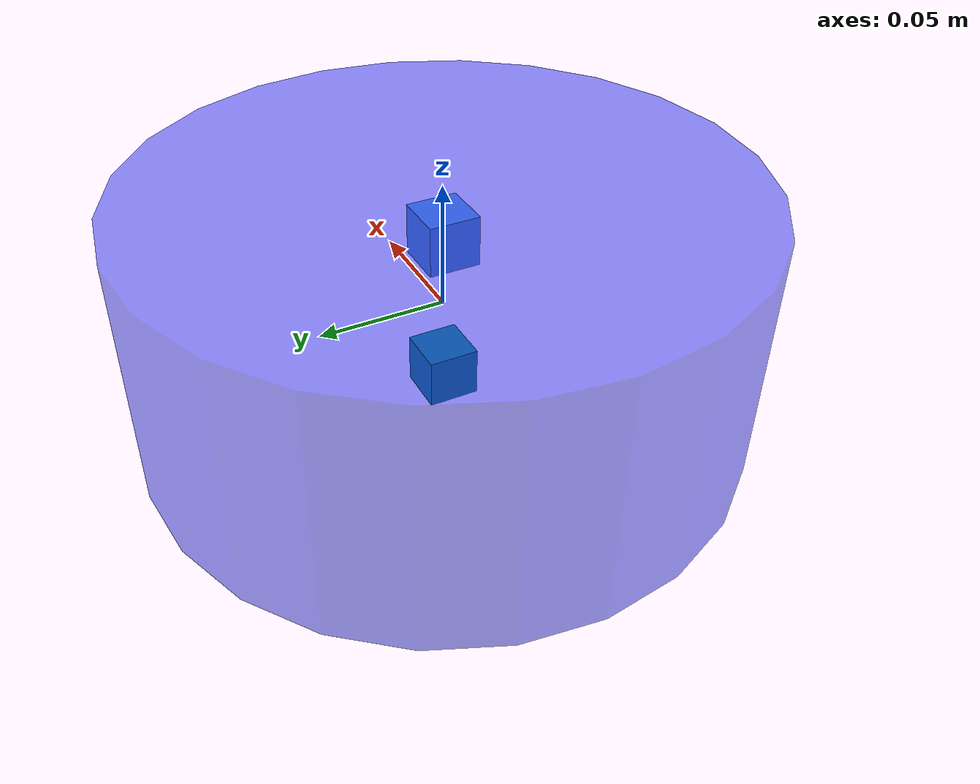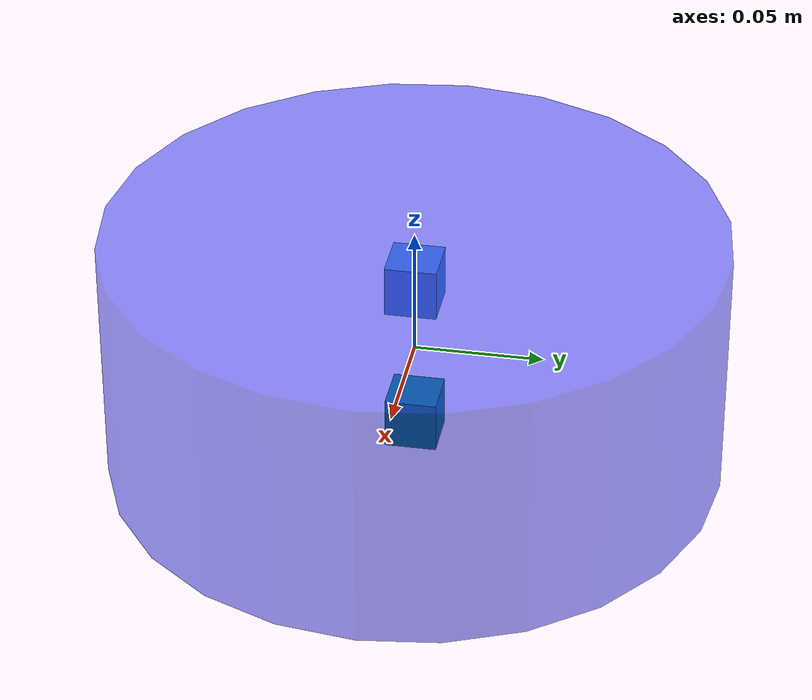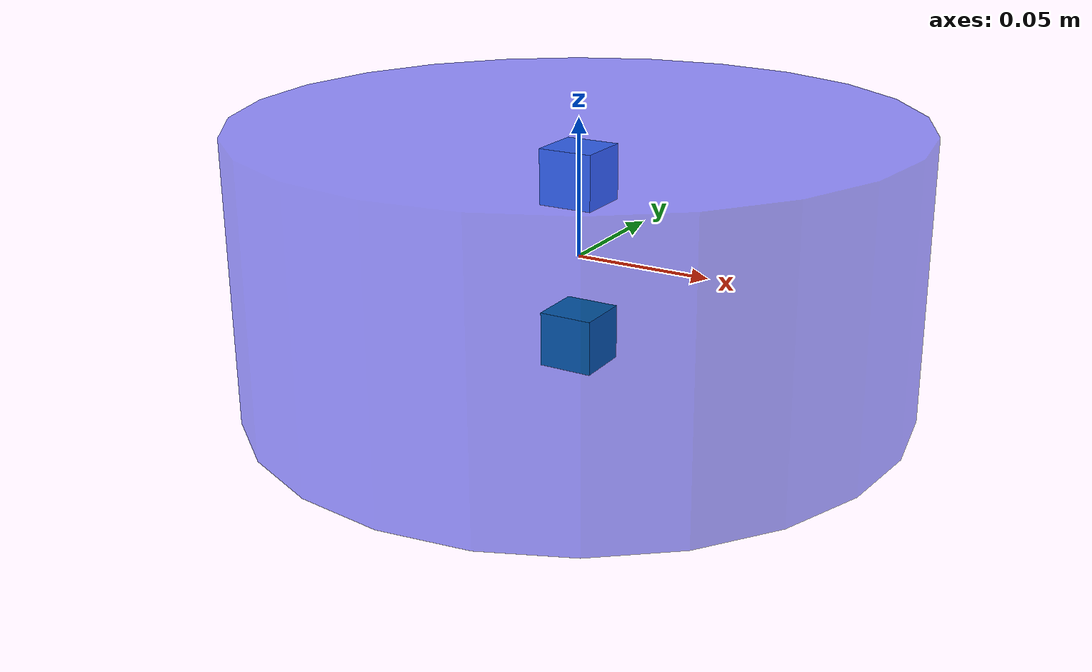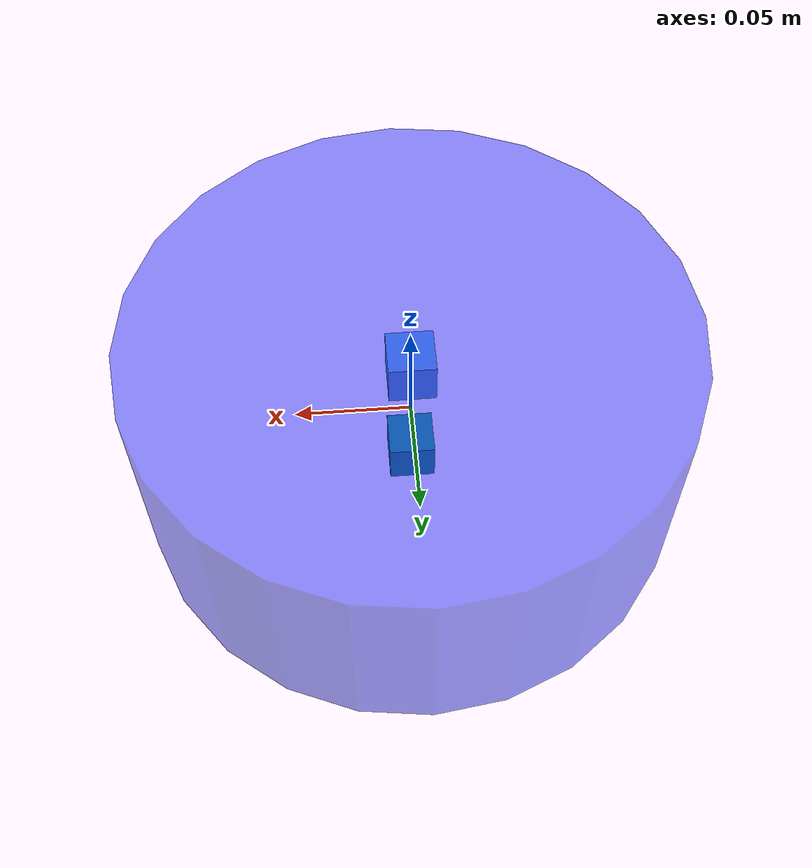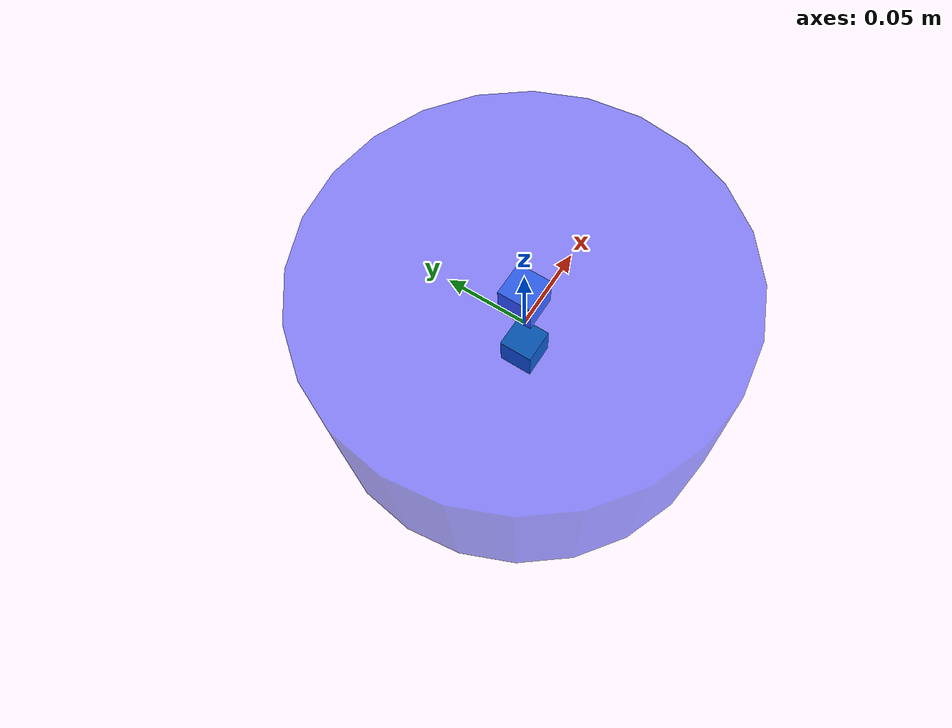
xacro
<?xml version="1.0"?>
<robot xmlns:xacro="http://www.ros.org/wiki/xacro" name="first_robot">
    <!-- 声明base模块 声明宏-->
    <xacro:macro name="base_link" params="length radius">
        <!-- 机器人身体部分 -->
        <link name="base_link">
            <!-- 部件外观描述 -->
            <visual>
                <!-- 沿自己几何中心的偏移与旋转量 -->
                <origin xyz="0 0 0" rpy="0 0 0" />
                <!-- 几何形状 -->
                <geometry>
                    <!-- 圆柱体，半径0.1m，高度 0.12m 在这里把参数用上 -->
                    <cylinder length="${radius}" radius="${length}" />
                </geometry>
                <!-- 材质子标签-蓝色 -->
                <material name="blue">
                    <color rgba="0.1 0.1 1.0 0.5" />
                </material>
            </visual>
        </link>
    </xacro:macro>

    <!-- 声明IMU模块 -->
    <xacro:macro name="imu_link" params="imu_name xyz">
        <!-- 机器人IMU部件 -->
        <link name="${imu_name}_link">
            <visual>
                <origin xyz="0 0 0" rpy="0 0 0" />
                <geometry>
                    <box size="0.02 0.02 0.02" />
                </geometry>
            </visual>
            <material name="black">
                <color rgba="0 0 0 0.5" />
            </material>
        </link>

        <!-- 机器人关节 -->
        <joint name="${imu_name}_joint" type="fixed">
            <!-- 父部件 -->
            <parent link="base_link" />
            <!-- 子部件 -->
            <child link="${imu_name}_link" />
            <!-- 子部件相对父部件的平移和旋转 -->
            <origin xyz="${xyz}" rpy="0 0 0" />
        </joint>
    </xacro:macro>

    <!-- 传递参数调用 base_link 模块 -->
    <xacro:base_link length="0.12" radius="0.1" />
    <!-- 传递参数调用 imu 模块 -->
    <xacro:imu_link imu_name="imu_up" xyz="0 0 0.03" />
    <xacro:imu_link imu_name="imu_down" xyz="0 0 -0.03" />

</robot>
